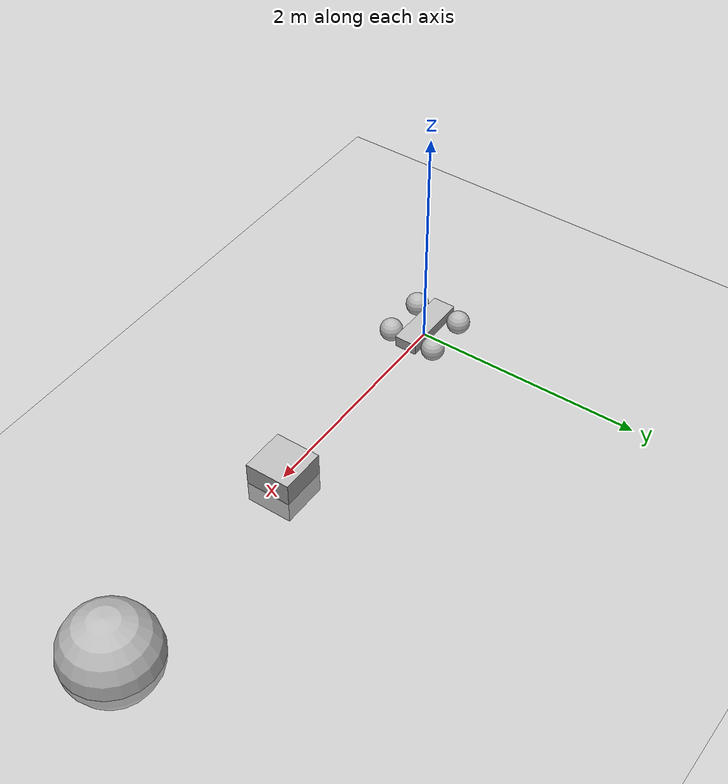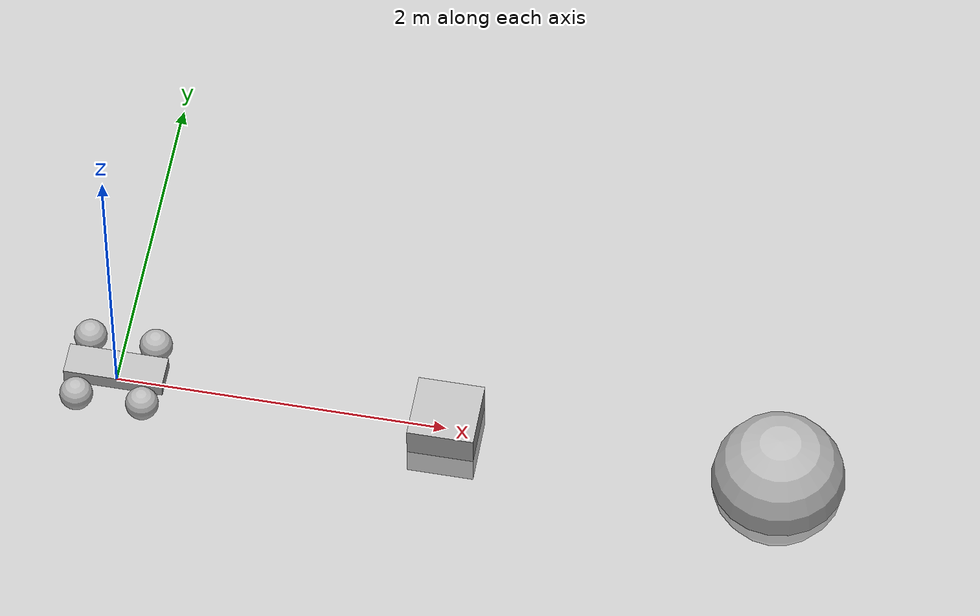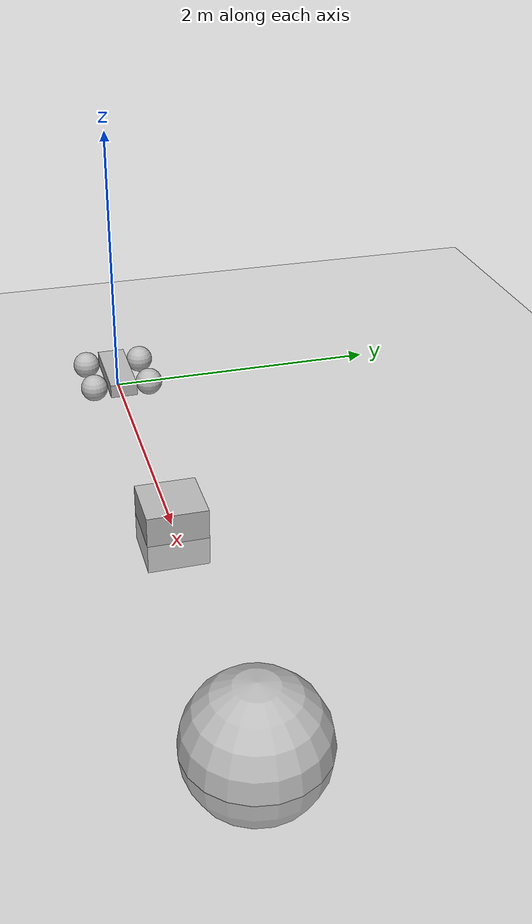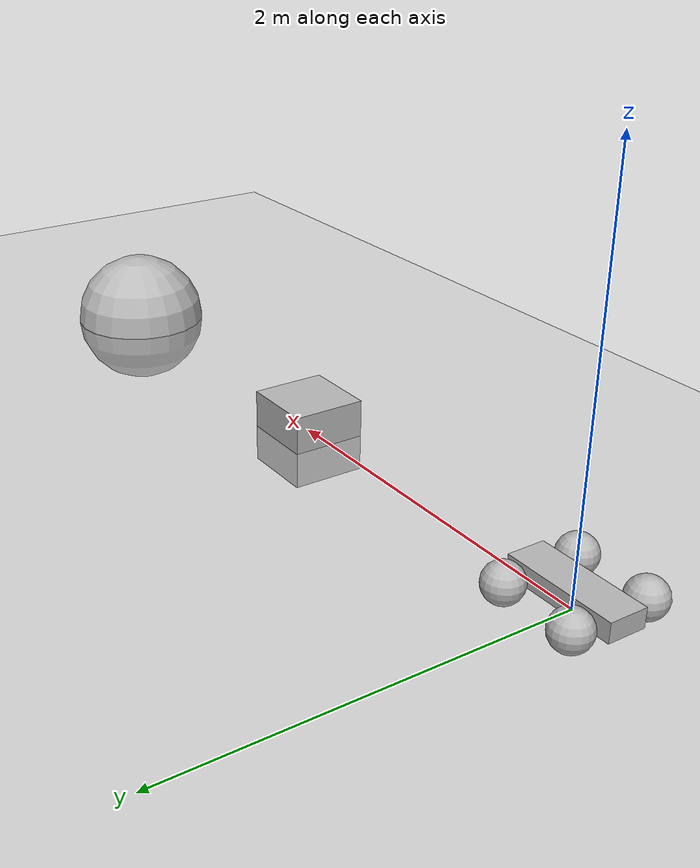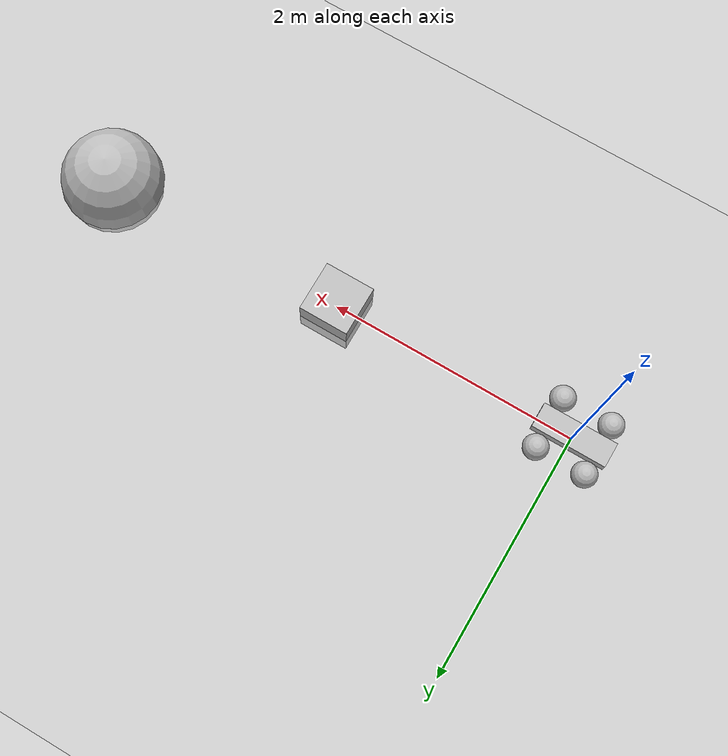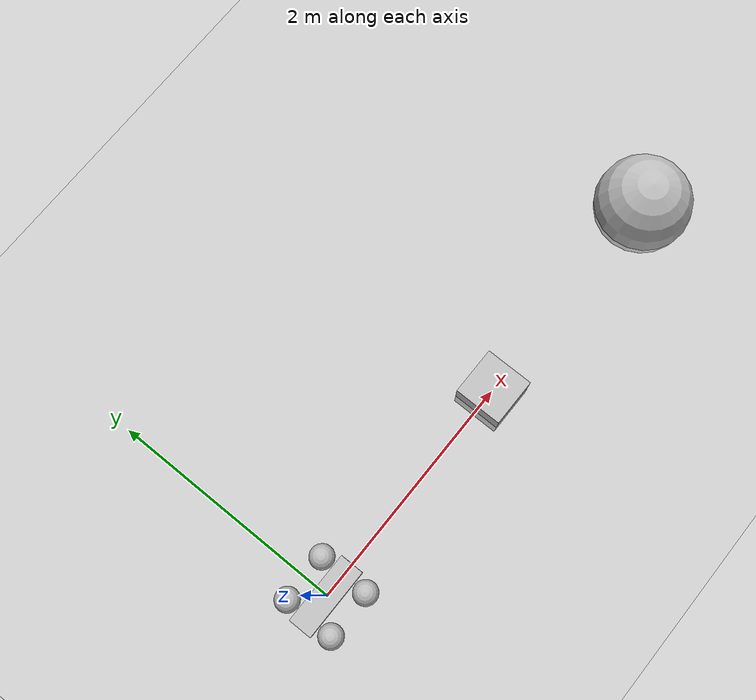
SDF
<?xml version="1.0"?>
<sdf version="1.6">
<world name="vehicle_world">

<!-- Sun -->
<include>
  <uri>model://sun</uri>
</include>

<!-- Ground Plane -->
<include>
  <uri>model://ground_plane</uri>
</include>

<!-- Goal -->
<include>
  <uri>model://goal</uri>
</include>

<!-- Vehicle -->
<include>
  <uri>model://vehicle</uri>
</include>

<!-- Obstacle -->
<include>
  <uri>model://obstacle</uri>
</include>

</world>
</sdf>

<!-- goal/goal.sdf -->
<sdf version="1.6">

<!-- Goal. -->
<model name="goal">
  <link name="goal">
    <pose>4 0 0 0 0 0</pose>

    <collision name="goal_collision">
      <geometry>
        <sphere>
          <radius>0.4</radius>
        </sphere>
      </geometry>
    </collision>

    <visual name="visual">
      <geometry>
        <sphere>
          <radius>0.4</radius>
        </sphere>
      </geometry>
      <material>
        <script>
          <uri>model://goal/materials/scripts</uri>
          <uri>model://goal/materials/textures</uri>
          <name>vehicle/goal</name>
        </script>
      </material>
    </visual>
  </link>
</model>
</sdf>

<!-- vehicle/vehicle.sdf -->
<sdf version="1.6">

<!-- iRobot -->
<model name="vehicle">

  <pose>0 0 0.1 0 0 0</pose>
  <static>false</static>

  <link name="chassis">
    <pose>0 0 0 0 0 0</pose>

    <inertial>
      <inertia>
        <!-- (mass / 12) * (y*y + z*z) -->
        <ixx>0.0041666666666666675</ixx>
        <ixy>0</ixy>
        <ixz>0</ixz>
        <!-- (mass / 12) * (x*x + z*z) -->
        <iyy>0.03083333333333333</iyy>
        <iyz>0</iyz>
        <!-- (mass / 12) * (y*y + x*x) -->
        <izz>0.03333333333333333</izz>
      </inertia>
    </inertial>

    <collision name="collision">
      <geometry>
        <box>
          <size>.6 .2 .1</size>
        </box>
      </geometry>
    </collision>

    <visual name="visual">
      <geometry>
        <box>
          <size>.6 .2 .1</size>
        </box>
      </geometry>
    </visual>

<!-- For Yarp compatibility -->

    <sensor type="camera" name="l_camera">
      <pose>.3 .1 .15 0 0 0</pose>
      <camera>
        <horizontal_fov>1.5708</horizontal_fov>
        <image>
          <width>752</width>
          <height>480</height>
        </image>
        <clip>
          <near>0.1</near>
          <far>100</far>
        </clip>
      </camera>
      <always_on>1</always_on>
      <update_rate>30</update_rate>
      <visualize>false</visualize>
      <plugin filename="libgazebo_yarp_camera.so" name="l_camera_plugin">
        <yarpConfigurationFile>model://vehicle/conf/l_camera.ini</yarpConfigurationFile>
      </plugin>
    </sensor>

    <sensor type="camera" name="r_camera">
      <pose>.3 -.1 .15 0 0 0</pose>
      <camera>
        <horizontal_fov>1.5708</horizontal_fov>
        <image>
          <width>752</width>
          <height>480</height>
        </image>
        <clip>
          <near>0.1</near>
          <far>100</far>
        </clip>
      </camera>
      <always_on>1</always_on>
      <update_rate>30</update_rate>
      <visualize>false</visualize>
      <plugin filename="libgazebo_yarp_camera.so" name="r_camera_plugin">
        <yarpConfigurationFile>model://vehicle/conf/r_camera.ini</yarpConfigurationFile>
      </plugin>
    </sensor>

    <sensor type="imu" name="imu">
      <pose>0 0 0 0 0 0</pose>
      <always_on>1</always_on>
      <update_rate>100</update_rate>
      <plugin filename='libgazebo_yarp_imu.so' name='imu_plugin'>
        <yarpConfigurationFile>model://vehicle/conf/chassis_intertial.ini</yarpConfigurationFile>
      </plugin>
    </sensor>
  </link>

  <link name="l_front_wheel">
    <pose>.2 .21 0 0 0 0</pose>

    <inertial>
      <inertia>
        <!-- (2*mass / 5) * (r*r) -->
        <ixx>0.004000000000000001</ixx>
        <ixy>0</ixy>
        <ixz>0</ixz>
        <!-- (2*mass / 5) * (r*r) -->
        <iyy>0.004000000000000001</iyy>
        <iyz>0</iyz>
        <!-- (2*mass / 5) * (r*r) -->
        <izz>0.004000000000000001</izz>
      </inertia>
    </inertial>

    <collision name="collision">
      <geometry>
        <sphere>
          <radius>.1</radius>
        </sphere>
      </geometry>
    </collision>

    <visual name="visual">
       <geometry>
        <sphere>
          <radius>.1</radius>
        </sphere>
      </geometry>
    </visual>
  </link>

  <link name="r_front_wheel">
    <pose>.2 -.21 0 0 0 0</pose>

    <inertial>
      <inertia>
        <!-- (2*mass / 5) * (r*r) -->
        <ixx>0.004000000000000001</ixx>
        <ixy>0</ixy>
        <ixz>0</ixz>
        <!-- (2*mass / 5) * (r*r) -->
        <iyy>0.004000000000000001</iyy>
        <iyz>0</iyz>
        <!-- (2*mass / 5) * (r*r) -->
        <izz>0.004000000000000001</izz>
      </inertia>
    </inertial>

    <collision name="collision">
      <geometry>
        <sphere>
          <radius>.1</radius>
        </sphere>
      </geometry>
    </collision>

    <visual name="visual">
       <geometry>
        <sphere>
          <radius>.1</radius>
        </sphere>
      </geometry>
    </visual>
  </link>

  <link name="l_back_wheel">
    <pose>-.2 .21 0 0 0 0</pose>

    <inertial>
      <inertia>
        <!-- (2*mass / 5) * (r*r) -->
        <ixx>0.004000000000000001</ixx>
        <ixy>0</ixy>
        <ixz>0</ixz>
        <!-- (2*mass / 5) * (r*r) -->
        <iyy>0.004000000000000001</iyy>
        <iyz>0</iyz>
        <!-- (2*mass / 5) * (r*r) -->
        <izz>0.004000000000000001</izz>
      </inertia>
    </inertial>

    <collision name="collision">
      <geometry>
        <sphere>
          <radius>.1</radius>
        </sphere>
      </geometry>
    </collision>

    <visual name="visual">
       <geometry>
        <sphere>
          <radius>.1</radius>
        </sphere>
      </geometry>
    </visual>
  </link>

  <link name="r_back_wheel">
    <pose>-.2 -.21 0 0 0 0</pose>

    <inertial>
      <inertia>
        <!-- (2*mass / 5) * (r*r) -->
        <ixx>0.004000000000000001</ixx>
        <ixy>0</ixy>
        <ixz>0</ixz>
        <!-- (2*mass / 5) * (r*r) -->
        <iyy>0.004000000000000001</iyy>
        <iyz>0</iyz>
        <!-- (2*mass / 5) * (r*r) -->
        <izz>0.004000000000000001</izz>
      </inertia>
    </inertial>

    <collision name="collision">
      <geometry>
        <sphere>
          <radius>.1</radius>
        </sphere>
      </geometry>
    </collision>

    <visual name="visual">
       <geometry>
        <sphere>
          <radius>.1</radius>
        </sphere>
      </geometry>
    </visual>
  </link>

  <link name="l_front_wheel_virtual">
    <pose>.2 .21 0 0 0 0</pose>
  </link>

  <link name="r_front_wheel_virtual">
    <pose>.2 -.21 0 0 0 0</pose>
  </link>

  <link name="l_back_wheel_virtual">
    <pose>-.2 .21 0 0 0 0</pose>
  </link>

  <link name="r_back_wheel_virtual">
    <pose>-.2 -.21 0 0 0 0</pose>
  </link>

  <joint type="revolute" name="l_front_wheel_pitch">
    <pose>0 0 0 0 0 0</pose>

    <parent>chassis</parent>
    <child>l_front_wheel_virtual</child>
    <axis>
      <xyz>0 1 0</xyz>
    </axis>
  </joint>

  <joint type="revolute" name="l_front_wheel_roll">
    <pose>0 0 0 0 0 0</pose>

    <parent>l_front_wheel_virtual</parent>
    <child>l_front_wheel</child>
    <axis>
      <use_parent_model_frame>1</use_parent_model_frame>
      <xyz>1 0 0</xyz>
    </axis>
  </joint>

  <joint type="revolute" name="r_front_wheel_pitch">
    <pose>0 0 0 0 0 0</pose>

    <parent>chassis</parent>
    <child>r_front_wheel_virtual</child>
    <axis>
      <xyz>0 1 0</xyz>
    </axis>
  </joint>

  <joint type="revolute" name="r_front_wheel_roll">
    <pose>0 0 0 0 0 0</pose>

    <parent>r_front_wheel_virtual</parent>
    <child>r_front_wheel</child>
    <axis>
      <use_parent_model_frame>1</use_parent_model_frame>
      <xyz>1 0 0</xyz>
    </axis>
  </joint>

  <joint type="revolute" name="l_back_wheel_pitch">
    <pose>0 0 0 0 0 0</pose>

    <parent>chassis</parent>
    <child>l_back_wheel_virtual</child>
    <axis>
      <xyz>0 1 0</xyz>
    </axis>
  </joint>

  <joint type="revolute" name="l_back_wheel_roll">
    <pose>0 0 0 0 0 0</pose>

    <parent>l_back_wheel_virtual</parent>
    <child>l_back_wheel</child>
    <axis>
      <use_parent_model_frame>1</use_parent_model_frame>
      <xyz>1 0 0</xyz>
    </axis>
  </joint>

  <joint type="revolute" name="r_back_wheel_pitch">
    <pose>0 0 0 0 0 0</pose>

    <parent>chassis</parent>
    <child>r_back_wheel_virtual</child>
    <axis>
      <xyz>0 1 0</xyz>
    </axis>
  </joint>

  <joint type="revolute" name="r_back_wheel_roll">
    <pose>0 0 0 0 0 0</pose>

    <parent>r_back_wheel_virtual</parent>
    <child>r_back_wheel</child>
    <axis>
      <use_parent_model_frame>1</use_parent_model_frame>
      <xyz>1 0 0</xyz>
    </axis>
  </joint>

  <plugin name="VehiclePlugin" filename="libgazeboVehiclePlugin.so"/>

</model>
</sdf>

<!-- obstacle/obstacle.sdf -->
<sdf version="1.6">

<!-- Obstacle -->
<model name="obstacle">
  <link name="obstacle">
    <pose>2 0 0 0 0 0</pose>

    <collision name="collision">
      <geometry>
        <box>
          <size>0.4 0.4 0.4</size>
        </box>
      </geometry>
    </collision>

    <visual name="visual">
      <geometry>
        <box>
          <size>0.4 0.4 0.4</size>
        </box>
      </geometry>
      <material>
        <script>
          <uri>model://obstacle/materials/scripts</uri>
          <uri>model://obstacle/materials/textures</uri>
          <name>vehicle/obstacle</name>
        </script>
      </material>
    </visual>
  </link>
</model>
</sdf>
